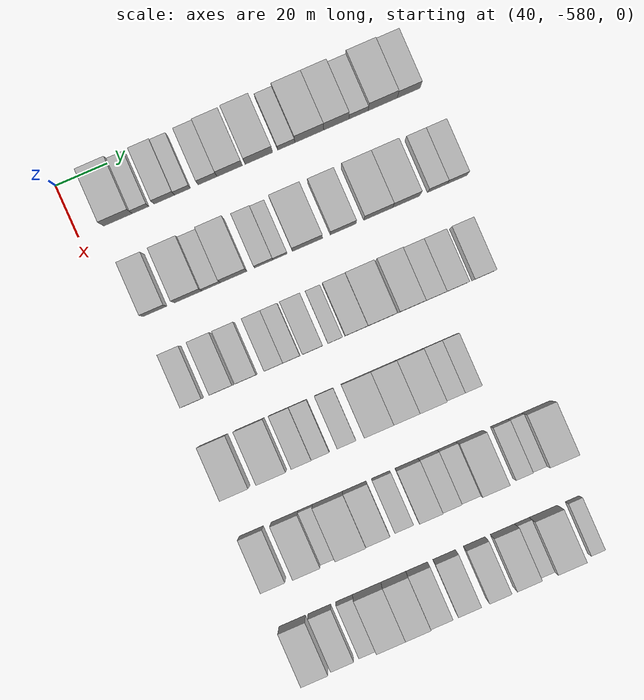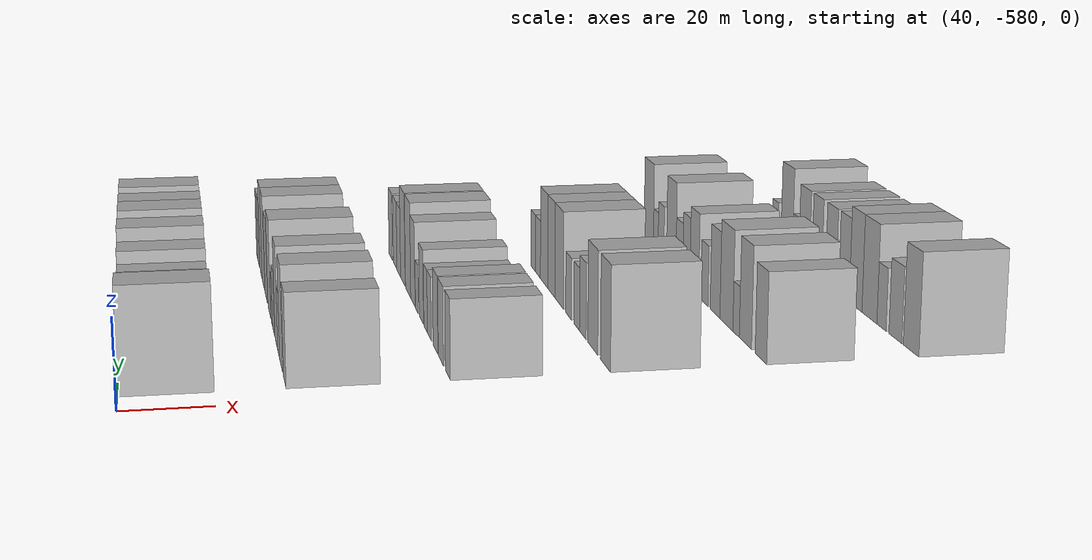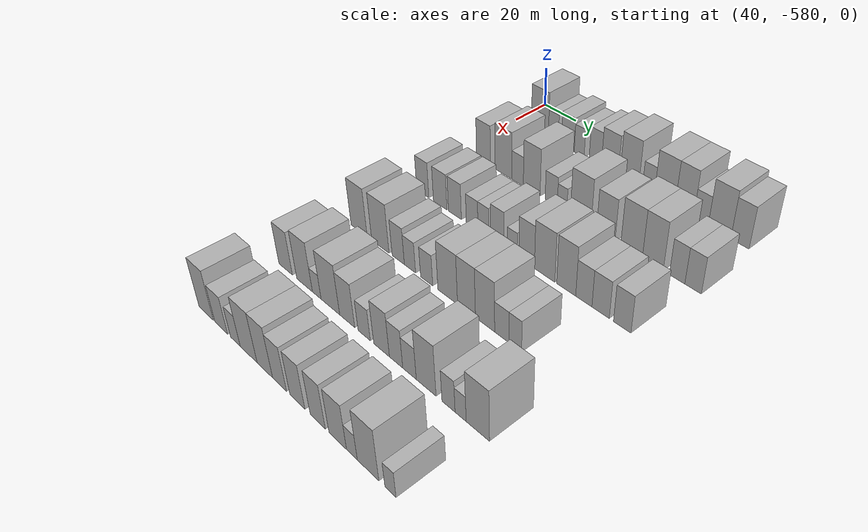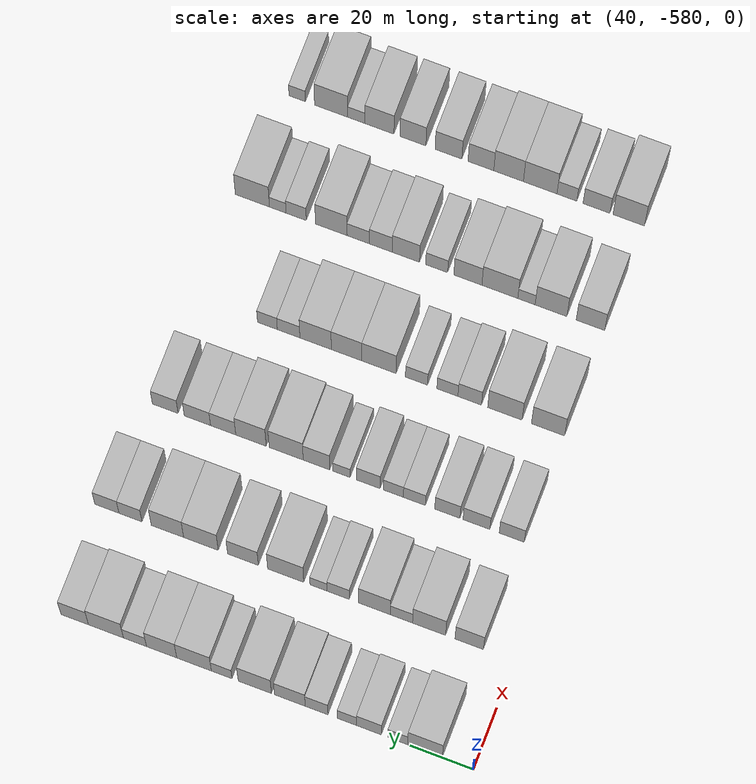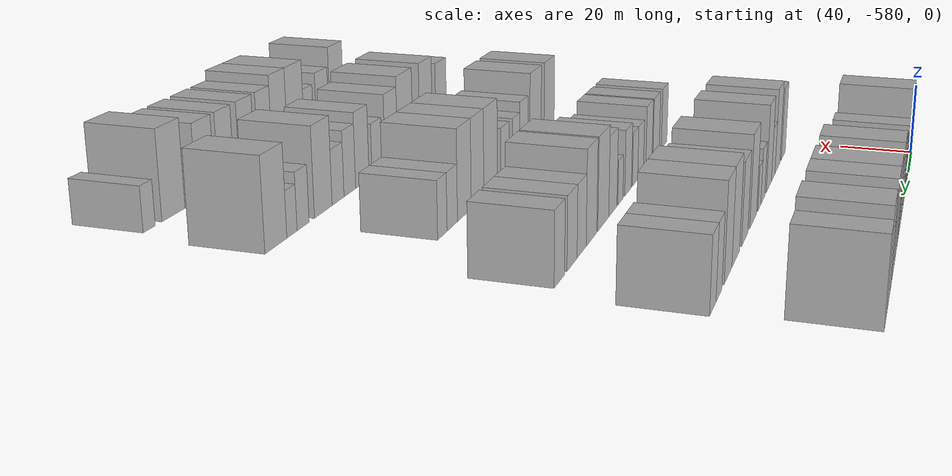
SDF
<sdf version="1.6">
 <world name="default">
  <model name="building_1">
   <static>1</static>
   <pose>50.0000 -564.4694 0 0.000000 0.000000 0.000000</pose>
   <link name="link">
    <pose>0 0 12.00 0 0 0</pose>
    <collision name="collision"><geometry><box><size>20.0000 11.0612 24.0000</size></box></geometry></collision>
    <visual name="visual">
     <cast_shadows>0</cast_shadows>
     <geometry><box><size>20.0000 11.0612 24.0000</size></box></geometry>
     <material>
      <script>
       <uri>model://HANNAS_wall/materials/scripts</uri>
       <uri>model://HANNAS_wall/materials/textures</uri>
       <name>vrc/HANNAS_wall</name>
      </script>
     </material>
    </visual>
   </link>
  </model>
  <model name="building_2">
   <static>1</static>
   <pose>50.0000 -555.7566 0 0.000000 0.000000 0.000000</pose>
   <link name="link">
    <pose>0 0 7.50 0 0 0</pose>
    <collision name="collision"><geometry><box><size>20.0000 6.3645 15.0000</size></box></geometry></collision>
    <visual name="visual">
     <cast_shadows>0</cast_shadows>
     <geometry><box><size>20.0000 6.3645 15.0000</size></box></geometry>
     <material>
      <script>
       <uri>model://HANNAS_wall/materials/scripts</uri>
       <uri>model://HANNAS_wall/materials/textures</uri>
       <name>vrc/HANNAS_wall</name>
      </script>
     </material>
    </visual>
   </link>
  </model>
  <model name="building_3">
   <static>1</static>
   <pose>50.0000 -546.5728 0 0.000000 0.000000 0.000000</pose>
   <link name="link">
    <pose>0 0 9.00 0 0 0</pose>
    <collision name="collision"><geometry><box><size>20.0000 8.0031 18.0000</size></box></geometry></collision>
    <visual name="visual">
     <cast_shadows>0</cast_shadows>
     <geometry><box><size>20.0000 8.0031 18.0000</size></box></geometry>
     <material>
      <script>
       <uri>model://HANNAS_wall/materials/scripts</uri>
       <uri>model://HANNAS_wall/materials/textures</uri>
       <name>vrc/HANNAS_wall</name>
      </script>
     </material>
    </visual>
   </link>
  </model>
  <model name="building_4">
   <static>1</static>
   <pose>50.0000 -539.5409 0 0.000000 0.000000 0.000000</pose>
   <link name="link">
    <pose>0 0 7.50 0 0 0</pose>
    <collision name="collision"><geometry><box><size>20.0000 6.0607 15.0000</size></box></geometry></collision>
    <visual name="visual">
     <cast_shadows>0</cast_shadows>
     <geometry><box><size>20.0000 6.0607 15.0000</size></box></geometry>
     <material>
      <script>
       <uri>model://HANNAS_wall/materials/scripts</uri>
       <uri>model://HANNAS_wall/materials/textures</uri>
       <name>vrc/HANNAS_wall</name>
      </script>
     </material>
    </visual>
   </link>
  </model>
  <model name="building_5">
   <static>1</static>
   <pose>50.0000 -529.8719 0 0.000000 0.000000 0.000000</pose>
   <link name="link">
    <pose>0 0 9.00 0 0 0</pose>
    <collision name="collision"><geometry><box><size>20.0000 7.2773 18.0000</size></box></geometry></collision>
    <visual name="visual">
     <cast_shadows>0</cast_shadows>
     <geometry><box><size>20.0000 7.2773 18.0000</size></box></geometry>
     <material>
      <script>
       <uri>model://HANNAS_wall/materials/scripts</uri>
       <uri>model://HANNAS_wall/materials/textures</uri>
       <name>vrc/HANNAS_wall</name>
      </script>
     </material>
    </visual>
   </link>
  </model>
  <model name="building_6">
   <static>1</static>
   <pose>50.0000 -521.3168 0 0.000000 0.000000 0.000000</pose>
   <link name="link">
    <pose>0 0 10.50 0 0 0</pose>
    <collision name="collision"><geometry><box><size>20.0000 9.8328 21.0000</size></box></geometry></collision>
    <visual name="visual">
     <cast_shadows>0</cast_shadows>
     <geometry><box><size>20.0000 9.8328 21.0000</size></box></geometry>
     <material>
      <script>
       <uri>model://HANNAS_wall/materials/scripts</uri>
       <uri>model://HANNAS_wall/materials/textures</uri>
       <name>vrc/HANNAS_wall</name>
      </script>
     </material>
    </visual>
   </link>
  </model>
  <model name="building_7">
   <static>1</static>
   <pose>50.0000 -510.0888 0 0.000000 0.000000 0.000000</pose>
   <link name="link">
    <pose>0 0 12.00 0 0 0</pose>
    <collision name="collision"><geometry><box><size>20.0000 10.6232 24.0000</size></box></geometry></collision>
    <visual name="visual">
     <cast_shadows>0</cast_shadows>
     <geometry><box><size>20.0000 10.6232 24.0000</size></box></geometry>
     <material>
      <script>
       <uri>model://HANNAS_wall/materials/scripts</uri>
       <uri>model://HANNAS_wall/materials/textures</uri>
       <name>vrc/HANNAS_wall</name>
      </script>
     </material>
    </visual>
   </link>
  </model>
  <model name="building_8">
   <static>1</static>
   <pose>50.0000 -499.4686 0 0.000000 0.000000 0.000000</pose>
   <link name="link">
    <pose>0 0 7.50 0 0 0</pose>
    <collision name="collision"><geometry><box><size>20.0000 6.6173 15.0000</size></box></geometry></collision>
    <visual name="visual">
     <cast_shadows>0</cast_shadows>
     <geometry><box><size>20.0000 6.6173 15.0000</size></box></geometry>
     <material>
      <script>
       <uri>model://HANNAS_wall/materials/scripts</uri>
       <uri>model://HANNAS_wall/materials/textures</uri>
       <name>vrc/HANNAS_wall</name>
      </script>
     </material>
    </visual>
   </link>
  </model>
  <model name="building_9">
   <static>1</static>
   <pose>50.0000 -490.6097 0 0.000000 0.000000 0.000000</pose>
   <link name="link">
    <pose>0 0 12.00 0 0 0</pose>
    <collision name="collision"><geometry><box><size>20.0000 11.1005 24.0000</size></box></geometry></collision>
    <visual name="visual">
     <cast_shadows>0</cast_shadows>
     <geometry><box><size>20.0000 11.1005 24.0000</size></box></geometry>
     <material>
      <script>
       <uri>model://HANNAS_wall/materials/scripts</uri>
       <uri>model://HANNAS_wall/materials/textures</uri>
       <name>vrc/HANNAS_wall</name>
      </script>
     </material>
    </visual>
   </link>
  </model>
  <model name="building_10">
   <static>1</static>
   <pose>50.0000 -480.1993 0 0.000000 0.000000 0.000000</pose>
   <link name="link">
    <pose>0 0 12.00 0 0 0</pose>
    <collision name="collision"><geometry><box><size>20.0000 9.7203 24.0000</size></box></geometry></collision>
    <visual name="visual">
     <cast_shadows>0</cast_shadows>
     <geometry><box><size>20.0000 9.7203 24.0000</size></box></geometry>
     <material>
      <script>
       <uri>model://HANNAS_wall/materials/scripts</uri>
       <uri>model://HANNAS_wall/materials/textures</uri>
       <name>vrc/HANNAS_wall</name>
      </script>
     </material>
    </visual>
   </link>
  </model>
  <model name="building_11">
   <static>1</static>
   <pose>50.0000 -471.6114 0 0.000000 0.000000 0.000000</pose>
   <link name="link">
    <pose>0 0 7.50 0 0 0</pose>
    <collision name="collision"><geometry><box><size>20.0000 7.4555 15.0000</size></box></geometry></collision>
    <visual name="visual">
     <cast_shadows>0</cast_shadows>
     <geometry><box><size>20.0000 7.4555 15.0000</size></box></geometry>
     <material>
      <script>
       <uri>model://HANNAS_wall/materials/scripts</uri>
       <uri>model://HANNAS_wall/materials/textures</uri>
       <name>vrc/HANNAS_wall</name>
      </script>
     </material>
    </visual>
   </link>
  </model>
  <model name="building_12">
   <static>1</static>
   <pose>50.0000 -462.2677 0 0.000000 0.000000 0.000000</pose>
   <link name="link">
    <pose>0 0 12.00 0 0 0</pose>
    <collision name="collision"><geometry><box><size>20.0000 11.2320 24.0000</size></box></geometry></collision>
    <visual name="visual">
     <cast_shadows>0</cast_shadows>
     <geometry><box><size>20.0000 11.2320 24.0000</size></box></geometry>
     <material>
      <script>
       <uri>model://HANNAS_wall/materials/scripts</uri>
       <uri>model://HANNAS_wall/materials/textures</uri>
       <name>vrc/HANNAS_wall</name>
      </script>
     </material>
    </visual>
   </link>
  </model>
  <model name="building_13">
   <static>1</static>
   <pose>50.0000 -452.2263 0 0.000000 0.000000 0.000000</pose>
   <link name="link">
    <pose>0 0 10.50 0 0 0</pose>
    <collision name="collision"><geometry><box><size>20.0000 8.8507 21.0000</size></box></geometry></collision>
    <visual name="visual">
     <cast_shadows>0</cast_shadows>
     <geometry><box><size>20.0000 8.8507 21.0000</size></box></geometry>
     <material>
      <script>
       <uri>model://HANNAS_wall/materials/scripts</uri>
       <uri>model://HANNAS_wall/materials/textures</uri>
       <name>vrc/HANNAS_wall</name>
      </script>
     </material>
    </visual>
   </link>
  </model>
  <model name="building_109">
   <static>1</static>
   <pose>85.0000 -565.4421 0 0.000000 0.000000 0.000000</pose>
   <link name="link">
    <pose>0 0 10.50 0 0 0</pose>
    <collision name="collision"><geometry><box><size>20.0000 9.1157 21.0000</size></box></geometry></collision>
    <visual name="visual">
     <cast_shadows>0</cast_shadows>
     <geometry><box><size>20.0000 9.1157 21.0000</size></box></geometry>
     <material>
      <script>
       <uri>model://HANNAS_wall/materials/scripts</uri>
       <uri>model://HANNAS_wall/materials/textures</uri>
       <name>vrc/HANNAS_wall</name>
      </script>
     </material>
    </visual>
   </link>
  </model>
  <model name="building_110">
   <static>1</static>
   <pose>85.0000 -552.5919 0 0.000000 0.000000 0.000000</pose>
   <link name="link">
    <pose>0 0 12.00 0 0 0</pose>
    <collision name="collision"><geometry><box><size>20.0000 10.5847 24.0000</size></box></geometry></collision>
    <visual name="visual">
     <cast_shadows>0</cast_shadows>
     <geometry><box><size>20.0000 10.5847 24.0000</size></box></geometry>
     <material>
      <script>
       <uri>model://HANNAS_wall/materials/scripts</uri>
       <uri>model://HANNAS_wall/materials/textures</uri>
       <name>vrc/HANNAS_wall</name>
      </script>
     </material>
    </visual>
   </link>
  </model>
  <model name="building_111">
   <static>1</static>
   <pose>85.0000 -543.7141 0 0.000000 0.000000 0.000000</pose>
   <link name="link">
    <pose>0 0 7.50 0 0 0</pose>
    <collision name="collision"><geometry><box><size>20.0000 7.1709 15.0000</size></box></geometry></collision>
    <visual name="visual">
     <cast_shadows>0</cast_shadows>
     <geometry><box><size>20.0000 7.1709 15.0000</size></box></geometry>
     <material>
      <script>
       <uri>model://HANNAS_wall/materials/scripts</uri>
       <uri>model://HANNAS_wall/materials/textures</uri>
       <name>vrc/HANNAS_wall</name>
      </script>
     </material>
    </visual>
   </link>
  </model>
  <model name="building_112">
   <static>1</static>
   <pose>85.0000 -535.0570 0 0.000000 0.000000 0.000000</pose>
   <link name="link">
    <pose>0 0 12.00 0 0 0</pose>
    <collision name="collision"><geometry><box><size>20.0000 10.1433 24.0000</size></box></geometry></collision>
    <visual name="visual">
     <cast_shadows>0</cast_shadows>
     <geometry><box><size>20.0000 10.1433 24.0000</size></box></geometry>
     <material>
      <script>
       <uri>model://HANNAS_wall/materials/scripts</uri>
       <uri>model://HANNAS_wall/materials/textures</uri>
       <name>vrc/HANNAS_wall</name>
      </script>
     </material>
    </visual>
   </link>
  </model>
  <model name="building_113">
   <static>1</static>
   <pose>85.0000 -523.4355 0 0.000000 0.000000 0.000000</pose>
   <link name="link">
    <pose>0 0 7.50 0 0 0</pose>
    <collision name="collision"><geometry><box><size>20.0000 7.0998 15.0000</size></box></geometry></collision>
    <visual name="visual">
     <cast_shadows>0</cast_shadows>
     <geometry><box><size>20.0000 7.0998 15.0000</size></box></geometry>
     <material>
      <script>
       <uri>model://HANNAS_wall/materials/scripts</uri>
       <uri>model://HANNAS_wall/materials/textures</uri>
       <name>vrc/HANNAS_wall</name>
      </script>
     </material>
    </visual>
   </link>
  </model>
  <model name="building_114">
   <static>1</static>
   <pose>85.0000 -517.1302 0 0.000000 0.000000 0.000000</pose>
   <link name="link">
    <pose>0 0 6.00 0 0 0</pose>
    <collision name="collision"><geometry><box><size>20.0000 5.5107 12.0000</size></box></geometry></collision>
    <visual name="visual">
     <cast_shadows>0</cast_shadows>
     <geometry><box><size>20.0000 5.5107 12.0000</size></box></geometry>
     <material>
      <script>
       <uri>model://HANNAS_wall/materials/scripts</uri>
       <uri>model://HANNAS_wall/materials/textures</uri>
       <name>vrc/HANNAS_wall</name>
      </script>
     </material>
    </visual>
   </link>
  </model>
  <model name="building_115">
   <static>1</static>
   <pose>85.0000 -506.5688 0 0.000000 0.000000 0.000000</pose>
   <link name="link">
    <pose>0 0 12.00 0 0 0</pose>
    <collision name="collision"><geometry><box><size>20.0000 11.6121 24.0000</size></box></geometry></collision>
    <visual name="visual">
     <cast_shadows>0</cast_shadows>
     <geometry><box><size>20.0000 11.6121 24.0000</size></box></geometry>
     <material>
      <script>
       <uri>model://HANNAS_wall/materials/scripts</uri>
       <uri>model://HANNAS_wall/materials/textures</uri>
       <name>vrc/HANNAS_wall</name>
      </script>
     </material>
    </visual>
   </link>
  </model>
  <model name="building_116">
   <static>1</static>
   <pose>85.0000 -492.8027 0 0.000000 0.000000 0.000000</pose>
   <link name="link">
    <pose>0 0 10.50 0 0 0</pose>
    <collision name="collision"><geometry><box><size>20.0000 9.9202 21.0000</size></box></geometry></collision>
    <visual name="visual">
     <cast_shadows>0</cast_shadows>
     <geometry><box><size>20.0000 9.9202 21.0000</size></box></geometry>
     <material>
      <script>
       <uri>model://HANNAS_wall/materials/scripts</uri>
       <uri>model://HANNAS_wall/materials/textures</uri>
       <name>vrc/HANNAS_wall</name>
      </script>
     </material>
    </visual>
   </link>
  </model>
  <model name="building_117">
   <static>1</static>
   <pose>85.0000 -479.2614 0 0.000000 0.000000 0.000000</pose>
   <link name="link">
    <pose>0 0 12.00 0 0 0</pose>
    <collision name="collision"><geometry><box><size>20.0000 11.1623 24.0000</size></box></geometry></collision>
    <visual name="visual">
     <cast_shadows>0</cast_shadows>
     <geometry><box><size>20.0000 11.1623 24.0000</size></box></geometry>
     <material>
      <script>
       <uri>model://HANNAS_wall/materials/scripts</uri>
       <uri>model://HANNAS_wall/materials/textures</uri>
       <name>vrc/HANNAS_wall</name>
      </script>
     </material>
    </visual>
   </link>
  </model>
  <model name="building_118">
   <static>1</static>
   <pose>85.0000 -468.4498 0 0.000000 0.000000 0.000000</pose>
   <link name="link">
    <pose>0 0 12.00 0 0 0</pose>
    <collision name="collision"><geometry><box><size>20.0000 10.4608 24.0000</size></box></geometry></collision>
    <visual name="visual">
     <cast_shadows>0</cast_shadows>
     <geometry><box><size>20.0000 10.4608 24.0000</size></box></geometry>
     <material>
      <script>
       <uri>model://HANNAS_wall/materials/scripts</uri>
       <uri>model://HANNAS_wall/materials/textures</uri>
       <name>vrc/HANNAS_wall</name>
      </script>
     </material>
    </visual>
   </link>
  </model>
  <model name="building_119">
   <static>1</static>
   <pose>85.0000 -456.4879 0 0.000000 0.000000 0.000000</pose>
   <link name="link">
    <pose>0 0 9.00 0 0 0</pose>
    <collision name="collision"><geometry><box><size>20.0000 7.4631 18.0000</size></box></geometry></collision>
    <visual name="visual">
     <cast_shadows>0</cast_shadows>
     <geometry><box><size>20.0000 7.4631 18.0000</size></box></geometry>
     <material>
      <script>
       <uri>model://HANNAS_wall/materials/scripts</uri>
       <uri>model://HANNAS_wall/materials/textures</uri>
       <name>vrc/HANNAS_wall</name>
      </script>
     </material>
    </visual>
   </link>
  </model>
  <model name="building_120">
   <static>1</static>
   <pose>85.0000 -448.8645 0 0.000000 0.000000 0.000000</pose>
   <link name="link">
    <pose>0 0 9.00 0 0 0</pose>
    <collision name="collision"><geometry><box><size>20.0000 7.7838 18.0000</size></box></geometry></collision>
    <visual name="visual">
     <cast_shadows>0</cast_shadows>
     <geometry><box><size>20.0000 7.7838 18.0000</size></box></geometry>
     <material>
      <script>
       <uri>model://HANNAS_wall/materials/scripts</uri>
       <uri>model://HANNAS_wall/materials/textures</uri>
       <name>vrc/HANNAS_wall</name>
      </script>
     </material>
    </visual>
   </link>
  </model>
  <model name="building_235">
   <static>1</static>
   <pose>120.0000 -565.9836 0 0.000000 0.000000 0.000000</pose>
   <link name="link">
    <pose>0 0 9.00 0 0 0</pose>
    <collision name="collision"><geometry><box><size>20.0000 8.0329 18.0000</size></box></geometry></collision>
    <visual name="visual">
     <cast_shadows>0</cast_shadows>
     <geometry><box><size>20.0000 8.0329 18.0000</size></box></geometry>
     <material>
      <script>
       <uri>model://HANNAS_wall/materials/scripts</uri>
       <uri>model://HANNAS_wall/materials/textures</uri>
       <name>vrc/HANNAS_wall</name>
      </script>
     </material>
    </visual>
   </link>
  </model>
  <model name="building_236">
   <static>1</static>
   <pose>120.0000 -554.6503 0 0.000000 0.000000 0.000000</pose>
   <link name="link">
    <pose>0 0 9.00 0 0 0</pose>
    <collision name="collision"><geometry><box><size>20.0000 8.6335 18.0000</size></box></geometry></collision>
    <visual name="visual">
     <cast_shadows>0</cast_shadows>
     <geometry><box><size>20.0000 8.6335 18.0000</size></box></geometry>
     <material>
      <script>
       <uri>model://HANNAS_wall/materials/scripts</uri>
       <uri>model://HANNAS_wall/materials/textures</uri>
       <name>vrc/HANNAS_wall</name>
      </script>
     </material>
    </visual>
   </link>
  </model>
  <model name="building_237">
   <static>1</static>
   <pose>120.0000 -545.2836 0 0.000000 0.000000 0.000000</pose>
   <link name="link">
    <pose>0 0 9.00 0 0 0</pose>
    <collision name="collision"><geometry><box><size>20.0000 8.1000 18.0000</size></box></geometry></collision>
    <visual name="visual">
     <cast_shadows>0</cast_shadows>
     <geometry><box><size>20.0000 8.1000 18.0000</size></box></geometry>
     <material>
      <script>
       <uri>model://HANNAS_wall/materials/scripts</uri>
       <uri>model://HANNAS_wall/materials/textures</uri>
       <name>vrc/HANNAS_wall</name>
      </script>
     </material>
    </visual>
   </link>
  </model>
  <model name="building_238">
   <static>1</static>
   <pose>120.0000 -534.6837 0 0.000000 0.000000 0.000000</pose>
   <link name="link">
    <pose>0 0 7.50 0 0 0</pose>
    <collision name="collision"><geometry><box><size>20.0000 7.0998 15.0000</size></box></geometry></collision>
    <visual name="visual">
     <cast_shadows>0</cast_shadows>
     <geometry><box><size>20.0000 7.0998 15.0000</size></box></geometry>
     <material>
      <script>
       <uri>model://HANNAS_wall/materials/scripts</uri>
       <uri>model://HANNAS_wall/materials/textures</uri>
       <name>vrc/HANNAS_wall</name>
      </script>
     </material>
    </visual>
   </link>
  </model>
  <model name="building_239">
   <static>1</static>
   <pose>120.0000 -527.8911 0 0.000000 0.000000 0.000000</pose>
   <link name="link">
    <pose>0 0 7.50 0 0 0</pose>
    <collision name="collision"><geometry><box><size>20.0000 6.4855 15.0000</size></box></geometry></collision>
    <visual name="visual">
     <cast_shadows>0</cast_shadows>
     <geometry><box><size>20.0000 6.4855 15.0000</size></box></geometry>
     <material>
      <script>
       <uri>model://HANNAS_wall/materials/scripts</uri>
       <uri>model://HANNAS_wall/materials/textures</uri>
       <name>vrc/HANNAS_wall</name>
      </script>
     </material>
    </visual>
   </link>
  </model>
  <model name="building_240">
   <static>1</static>
   <pose>120.0000 -519.8082 0 0.000000 0.000000 0.000000</pose>
   <link name="link">
    <pose>0 0 9.00 0 0 0</pose>
    <collision name="collision"><geometry><box><size>20.0000 7.6802 18.0000</size></box></geometry></collision>
    <visual name="visual">
     <cast_shadows>0</cast_shadows>
     <geometry><box><size>20.0000 7.6802 18.0000</size></box></geometry>
     <material>
      <script>
       <uri>model://HANNAS_wall/materials/scripts</uri>
       <uri>model://HANNAS_wall/materials/textures</uri>
       <name>vrc/HANNAS_wall</name>
      </script>
     </material>
    </visual>
   </link>
  </model>
  <model name="building_241">
   <static>1</static>
   <pose>120.0000 -511.1791 0 0.000000 0.000000 0.000000</pose>
   <link name="link">
    <pose>0 0 6.00 0 0 0</pose>
    <collision name="collision"><geometry><box><size>20.0000 5.5779 12.0000</size></box></geometry></collision>
    <visual name="visual">
     <cast_shadows>0</cast_shadows>
     <geometry><box><size>20.0000 5.5779 12.0000</size></box></geometry>
     <material>
      <script>
       <uri>model://HANNAS_wall/materials/scripts</uri>
       <uri>model://HANNAS_wall/materials/textures</uri>
       <name>vrc/HANNAS_wall</name>
      </script>
     </material>
    </visual>
   </link>
  </model>
  <model name="building_242">
   <static>1</static>
   <pose>120.0000 -503.0966 0 0.000000 0.000000 0.000000</pose>
   <link name="link">
    <pose>0 0 10.50 0 0 0</pose>
    <collision name="collision"><geometry><box><size>20.0000 8.5871 21.0000</size></box></geometry></collision>
    <visual name="visual">
     <cast_shadows>0</cast_shadows>
     <geometry><box><size>20.0000 8.5871 21.0000</size></box></geometry>
     <material>
      <script>
       <uri>model://HANNAS_wall/materials/scripts</uri>
       <uri>model://HANNAS_wall/materials/textures</uri>
       <name>vrc/HANNAS_wall</name>
      </script>
     </material>
    </visual>
   </link>
  </model>
  <model name="building_243">
   <static>1</static>
   <pose>120.0000 -493.3156 0 0.000000 0.000000 0.000000</pose>
   <link name="link">
    <pose>0 0 12.00 0 0 0</pose>
    <collision name="collision"><geometry><box><size>20.0000 10.9748 24.0000</size></box></geometry></collision>
    <visual name="visual">
     <cast_shadows>0</cast_shadows>
     <geometry><box><size>20.0000 10.9748 24.0000</size></box></geometry>
     <material>
      <script>
       <uri>model://HANNAS_wall/materials/scripts</uri>
       <uri>model://HANNAS_wall/materials/textures</uri>
       <name>vrc/HANNAS_wall</name>
      </script>
     </material>
    </visual>
   </link>
  </model>
  <model name="building_244">
   <static>1</static>
   <pose>120.0000 -481.9052 0 0.000000 0.000000 0.000000</pose>
   <link name="link">
    <pose>0 0 12.00 0 0 0</pose>
    <collision name="collision"><geometry><box><size>20.0000 9.8461 24.0000</size></box></geometry></collision>
    <visual name="visual">
     <cast_shadows>0</cast_shadows>
     <geometry><box><size>20.0000 9.8461 24.0000</size></box></geometry>
     <material>
      <script>
       <uri>model://HANNAS_wall/materials/scripts</uri>
       <uri>model://HANNAS_wall/materials/textures</uri>
       <name>vrc/HANNAS_wall</name>
      </script>
     </material>
    </visual>
   </link>
  </model>
  <model name="building_245">
   <static>1</static>
   <pose>120.0000 -472.8970 0 0.000000 0.000000 0.000000</pose>
   <link name="link">
    <pose>0 0 9.00 0 0 0</pose>
    <collision name="collision"><geometry><box><size>20.0000 8.1704 18.0000</size></box></geometry></collision>
    <visual name="visual">
     <cast_shadows>0</cast_shadows>
     <geometry><box><size>20.0000 8.1704 18.0000</size></box></geometry>
     <material>
      <script>
       <uri>model://HANNAS_wall/materials/scripts</uri>
       <uri>model://HANNAS_wall/materials/textures</uri>
       <name>vrc/HANNAS_wall</name>
      </script>
     </material>
    </visual>
   </link>
  </model>
  <model name="building_246">
   <static>1</static>
   <pose>120.0000 -464.5476 0 0.000000 0.000000 0.000000</pose>
   <link name="link">
    <pose>0 0 9.00 0 0 0</pose>
    <collision name="collision"><geometry><box><size>20.0000 8.5283 18.0000</size></box></geometry></collision>
    <visual name="visual">
     <cast_shadows>0</cast_shadows>
     <geometry><box><size>20.0000 8.5283 18.0000</size></box></geometry>
     <material>
      <script>
       <uri>model://HANNAS_wall/materials/scripts</uri>
       <uri>model://HANNAS_wall/materials/textures</uri>
       <name>vrc/HANNAS_wall</name>
      </script>
     </material>
    </visual>
   </link>
  </model>
  <model name="building_247">
   <static>1</static>
   <pose>120.0000 -454.1148 0 0.000000 0.000000 0.000000</pose>
   <link name="link">
    <pose>0 0 9.00 0 0 0</pose>
    <collision name="collision"><geometry><box><size>20.0000 8.3374 18.0000</size></box></geometry></collision>
    <visual name="visual">
     <cast_shadows>0</cast_shadows>
     <geometry><box><size>20.0000 8.3374 18.0000</size></box></geometry>
     <material>
      <script>
       <uri>model://HANNAS_wall/materials/scripts</uri>
       <uri>model://HANNAS_wall/materials/textures</uri>
       <name>vrc/HANNAS_wall</name>
      </script>
     </material>
    </visual>
   </link>
  </model>
  <model name="building_355">
   <static>1</static>
   <pose>155.0000 -564.6391 0 0.000000 0.000000 0.000000</pose>
   <link name="link">
    <pose>0 0 12.00 0 0 0</pose>
    <collision name="collision"><geometry><box><size>20.0000 10.7218 24.0000</size></box></geometry></collision>
    <visual name="visual">
     <cast_shadows>0</cast_shadows>
     <geometry><box><size>20.0000 10.7218 24.0000</size></box></geometry>
     <material>
      <script>
       <uri>model://HANNAS_wall/materials/scripts</uri>
       <uri>model://HANNAS_wall/materials/textures</uri>
       <name>vrc/HANNAS_wall</name>
      </script>
     </material>
    </visual>
   </link>
  </model>
  <model name="building_356">
   <static>1</static>
   <pose>155.0000 -550.7247 0 0.000000 0.000000 0.000000</pose>
   <link name="link">
    <pose>0 0 12.00 0 0 0</pose>
    <collision name="collision"><geometry><box><size>20.0000 11.1071 24.0000</size></box></geometry></collision>
    <visual name="visual">
     <cast_shadows>0</cast_shadows>
     <geometry><box><size>20.0000 11.1071 24.0000</size></box></geometry>
     <material>
      <script>
       <uri>model://HANNAS_wall/materials/scripts</uri>
       <uri>model://HANNAS_wall/materials/textures</uri>
       <name>vrc/HANNAS_wall</name>
      </script>
     </material>
    </visual>
   </link>
  </model>
  <model name="building_357">
   <static>1</static>
   <pose>155.0000 -539.3693 0 0.000000 0.000000 0.000000</pose>
   <link name="link">
    <pose>0 0 9.00 0 0 0</pose>
    <collision name="collision"><geometry><box><size>20.0000 7.6036 18.0000</size></box></geometry></collision>
    <visual name="visual">
     <cast_shadows>0</cast_shadows>
     <geometry><box><size>20.0000 7.6036 18.0000</size></box></geometry>
     <material>
      <script>
       <uri>model://HANNAS_wall/materials/scripts</uri>
       <uri>model://HANNAS_wall/materials/textures</uri>
       <name>vrc/HANNAS_wall</name>
      </script>
     </material>
    </visual>
   </link>
  </model>
  <model name="building_358">
   <static>1</static>
   <pose>155.0000 -532.1546 0 0.000000 0.000000 0.000000</pose>
   <link name="link">
    <pose>0 0 7.50 0 0 0</pose>
    <collision name="collision"><geometry><box><size>20.0000 6.8258 15.0000</size></box></geometry></collision>
    <visual name="visual">
     <cast_shadows>0</cast_shadows>
     <geometry><box><size>20.0000 6.8258 15.0000</size></box></geometry>
     <material>
      <script>
       <uri>model://HANNAS_wall/materials/scripts</uri>
       <uri>model://HANNAS_wall/materials/textures</uri>
       <name>vrc/HANNAS_wall</name>
      </script>
     </material>
    </visual>
   </link>
  </model>
  <model name="building_359">
   <static>1</static>
   <pose>155.0000 -522.1520 0 0.000000 0.000000 0.000000</pose>
   <link name="link">
    <pose>0 0 7.50 0 0 0</pose>
    <collision name="collision"><geometry><box><size>20.0000 7.1795 15.0000</size></box></geometry></collision>
    <visual name="visual">
     <cast_shadows>0</cast_shadows>
     <geometry><box><size>20.0000 7.1795 15.0000</size></box></geometry>
     <material>
      <script>
       <uri>model://HANNAS_wall/materials/scripts</uri>
       <uri>model://HANNAS_wall/materials/textures</uri>
       <name>vrc/HANNAS_wall</name>
      </script>
     </material>
    </visual>
   </link>
  </model>
  <model name="building_360">
   <static>1</static>
   <pose>155.0000 -509.9918 0 0.000000 0.000000 0.000000</pose>
   <link name="link">
    <pose>0 0 12.00 0 0 0</pose>
    <collision name="collision"><geometry><box><size>20.0000 11.1408 24.0000</size></box></geometry></collision>
    <visual name="visual">
     <cast_shadows>0</cast_shadows>
     <geometry><box><size>20.0000 11.1408 24.0000</size></box></geometry>
     <material>
      <script>
       <uri>model://HANNAS_wall/materials/scripts</uri>
       <uri>model://HANNAS_wall/materials/textures</uri>
       <name>vrc/HANNAS_wall</name>
      </script>
     </material>
    </visual>
   </link>
  </model>
  <model name="building_361">
   <static>1</static>
   <pose>155.0000 -499.4923 0 0.000000 0.000000 0.000000</pose>
   <link name="link">
    <pose>0 0 12.00 0 0 0</pose>
    <collision name="collision"><geometry><box><size>20.0000 9.8582 24.0000</size></box></geometry></collision>
    <visual name="visual">
     <cast_shadows>0</cast_shadows>
     <geometry><box><size>20.0000 9.8582 24.0000</size></box></geometry>
     <material>
      <script>
       <uri>model://HANNAS_wall/materials/scripts</uri>
       <uri>model://HANNAS_wall/materials/textures</uri>
       <name>vrc/HANNAS_wall</name>
      </script>
     </material>
    </visual>
   </link>
  </model>
  <model name="building_362">
   <static>1</static>
   <pose>155.0000 -489.4563 0 0.000000 0.000000 0.000000</pose>
   <link name="link">
    <pose>0 0 12.00 0 0 0</pose>
    <collision name="collision"><geometry><box><size>20.0000 10.2139 24.0000</size></box></geometry></collision>
    <visual name="visual">
     <cast_shadows>0</cast_shadows>
     <geometry><box><size>20.0000 10.2139 24.0000</size></box></geometry>
     <material>
      <script>
       <uri>model://HANNAS_wall/materials/scripts</uri>
       <uri>model://HANNAS_wall/materials/textures</uri>
       <name>vrc/HANNAS_wall</name>
      </script>
     </material>
    </visual>
   </link>
  </model>
  <model name="building_363">
   <static>1</static>
   <pose>155.0000 -480.6764 0 0.000000 0.000000 0.000000</pose>
   <link name="link">
    <pose>0 0 7.50 0 0 0</pose>
    <collision name="collision"><geometry><box><size>20.0000 7.3459 15.0000</size></box></geometry></collision>
    <visual name="visual">
     <cast_shadows>0</cast_shadows>
     <geometry><box><size>20.0000 7.3459 15.0000</size></box></geometry>
     <material>
      <script>
       <uri>model://HANNAS_wall/materials/scripts</uri>
       <uri>model://HANNAS_wall/materials/textures</uri>
       <name>vrc/HANNAS_wall</name>
      </script>
     </material>
    </visual>
   </link>
  </model>
  <model name="building_364">
   <static>1</static>
   <pose>155.0000 -473.7856 0 0.000000 0.000000 0.000000</pose>
   <link name="link">
    <pose>0 0 7.50 0 0 0</pose>
    <collision name="collision"><geometry><box><size>20.0000 6.4359 15.0000</size></box></geometry></collision>
    <visual name="visual">
     <cast_shadows>0</cast_shadows>
     <geometry><box><size>20.0000 6.4359 15.0000</size></box></geometry>
     <material>
      <script>
       <uri>model://HANNAS_wall/materials/scripts</uri>
       <uri>model://HANNAS_wall/materials/textures</uri>
       <name>vrc/HANNAS_wall</name>
      </script>
     </material>
    </visual>
   </link>
  </model>
  <model name="building_480">
   <static>1</static>
   <pose>190.0000 -565.3898 0 0.000000 0.000000 0.000000</pose>
   <link name="link">
    <pose>0 0 10.50 0 0 0</pose>
    <collision name="collision"><geometry><box><size>20.0000 9.2204 21.0000</size></box></geometry></collision>
    <visual name="visual">
     <cast_shadows>0</cast_shadows>
     <geometry><box><size>20.0000 9.2204 21.0000</size></box></geometry>
     <material>
      <script>
       <uri>model://HANNAS_wall/materials/scripts</uri>
       <uri>model://HANNAS_wall/materials/textures</uri>
       <name>vrc/HANNAS_wall</name>
      </script>
     </material>
    </visual>
   </link>
  </model>
  <model name="building_481">
   <static>1</static>
   <pose>190.0000 -552.6257 0 0.000000 0.000000 0.000000</pose>
   <link name="link">
    <pose>0 0 12.00 0 0 0</pose>
    <collision name="collision"><geometry><box><size>20.0000 10.3079 24.0000</size></box></geometry></collision>
    <visual name="visual">
     <cast_shadows>0</cast_shadows>
     <geometry><box><size>20.0000 10.3079 24.0000</size></box></geometry>
     <material>
      <script>
       <uri>model://HANNAS_wall/materials/scripts</uri>
       <uri>model://HANNAS_wall/materials/textures</uri>
       <name>vrc/HANNAS_wall</name>
      </script>
     </material>
    </visual>
   </link>
  </model>
  <model name="building_482">
   <static>1</static>
   <pose>190.0000 -544.6682 0 0.000000 0.000000 0.000000</pose>
   <link name="link">
    <pose>0 0 6.00 0 0 0</pose>
    <collision name="collision"><geometry><box><size>20.0000 5.6070 12.0000</size></box></geometry></collision>
    <visual name="visual">
     <cast_shadows>0</cast_shadows>
     <geometry><box><size>20.0000 5.6070 12.0000</size></box></geometry>
     <material>
      <script>
       <uri>model://HANNAS_wall/materials/scripts</uri>
       <uri>model://HANNAS_wall/materials/textures</uri>
       <name>vrc/HANNAS_wall</name>
      </script>
     </material>
    </visual>
   </link>
  </model>
  <model name="building_483">
   <static>1</static>
   <pose>190.0000 -536.0371 0 0.000000 0.000000 0.000000</pose>
   <link name="link">
    <pose>0 0 12.00 0 0 0</pose>
    <collision name="collision"><geometry><box><size>20.0000 11.6553 24.0000</size></box></geometry></collision>
    <visual name="visual">
     <cast_shadows>0</cast_shadows>
     <geometry><box><size>20.0000 11.6553 24.0000</size></box></geometry>
     <material>
      <script>
       <uri>model://HANNAS_wall/materials/scripts</uri>
       <uri>model://HANNAS_wall/materials/textures</uri>
       <name>vrc/HANNAS_wall</name>
      </script>
     </material>
    </visual>
   </link>
  </model>
  <model name="building_484">
   <static>1</static>
   <pose>190.0000 -525.6452 0 0.000000 0.000000 0.000000</pose>
   <link name="link">
    <pose>0 0 10.50 0 0 0</pose>
    <collision name="collision"><geometry><box><size>20.0000 9.1285 21.0000</size></box></geometry></collision>
    <visual name="visual">
     <cast_shadows>0</cast_shadows>
     <geometry><box><size>20.0000 9.1285 21.0000</size></box></geometry>
     <material>
      <script>
       <uri>model://HANNAS_wall/materials/scripts</uri>
       <uri>model://HANNAS_wall/materials/textures</uri>
       <name>vrc/HANNAS_wall</name>
      </script>
     </material>
    </visual>
   </link>
  </model>
  <model name="building_485">
   <static>1</static>
   <pose>190.0000 -515.5047 0 0.000000 0.000000 0.000000</pose>
   <link name="link">
    <pose>0 0 7.50 0 0 0</pose>
    <collision name="collision"><geometry><box><size>20.0000 7.1524 15.0000</size></box></geometry></collision>
    <visual name="visual">
     <cast_shadows>0</cast_shadows>
     <geometry><box><size>20.0000 7.1524 15.0000</size></box></geometry>
     <material>
      <script>
       <uri>model://HANNAS_wall/materials/scripts</uri>
       <uri>model://HANNAS_wall/materials/textures</uri>
       <name>vrc/HANNAS_wall</name>
      </script>
     </material>
    </visual>
   </link>
  </model>
  <model name="building_486">
   <static>1</static>
   <pose>190.0000 -505.4732 0 0.000000 0.000000 0.000000</pose>
   <link name="link">
    <pose>0 0 10.50 0 0 0</pose>
    <collision name="collision"><geometry><box><size>20.0000 8.9107 21.0000</size></box></geometry></collision>
    <visual name="visual">
     <cast_shadows>0</cast_shadows>
     <geometry><box><size>20.0000 8.9107 21.0000</size></box></geometry>
     <material>
      <script>
       <uri>model://HANNAS_wall/materials/scripts</uri>
       <uri>model://HANNAS_wall/materials/textures</uri>
       <name>vrc/HANNAS_wall</name>
      </script>
     </material>
    </visual>
   </link>
  </model>
  <model name="building_487">
   <static>1</static>
   <pose>190.0000 -497.3341 0 0.000000 0.000000 0.000000</pose>
   <link name="link">
    <pose>0 0 9.00 0 0 0</pose>
    <collision name="collision"><geometry><box><size>20.0000 7.3675 18.0000</size></box></geometry></collision>
    <visual name="visual">
     <cast_shadows>0</cast_shadows>
     <geometry><box><size>20.0000 7.3675 18.0000</size></box></geometry>
     <material>
      <script>
       <uri>model://HANNAS_wall/materials/scripts</uri>
       <uri>model://HANNAS_wall/materials/textures</uri>
       <name>vrc/HANNAS_wall</name>
      </script>
     </material>
    </visual>
   </link>
  </model>
  <model name="building_488">
   <static>1</static>
   <pose>190.0000 -490.0083 0 0.000000 0.000000 0.000000</pose>
   <link name="link">
    <pose>0 0 7.50 0 0 0</pose>
    <collision name="collision"><geometry><box><size>20.0000 7.2841 15.0000</size></box></geometry></collision>
    <visual name="visual">
     <cast_shadows>0</cast_shadows>
     <geometry><box><size>20.0000 7.2841 15.0000</size></box></geometry>
     <material>
      <script>
       <uri>model://HANNAS_wall/materials/scripts</uri>
       <uri>model://HANNAS_wall/materials/textures</uri>
       <name>vrc/HANNAS_wall</name>
      </script>
     </material>
    </visual>
   </link>
  </model>
  <model name="building_489">
   <static>1</static>
   <pose>190.0000 -481.1979 0 0.000000 0.000000 0.000000</pose>
   <link name="link">
    <pose>0 0 12.00 0 0 0</pose>
    <collision name="collision"><geometry><box><size>20.0000 10.3369 24.0000</size></box></geometry></collision>
    <visual name="visual">
     <cast_shadows>0</cast_shadows>
     <geometry><box><size>20.0000 10.3369 24.0000</size></box></geometry>
     <material>
      <script>
       <uri>model://HANNAS_wall/materials/scripts</uri>
       <uri>model://HANNAS_wall/materials/textures</uri>
       <name>vrc/HANNAS_wall</name>
      </script>
     </material>
    </visual>
   </link>
  </model>
  <model name="building_490">
   <static>1</static>
   <pose>190.0000 -469.7357 0 0.000000 0.000000 0.000000</pose>
   <link name="link">
    <pose>0 0 7.50 0 0 0</pose>
    <collision name="collision"><geometry><box><size>20.0000 6.5876 15.0000</size></box></geometry></collision>
    <visual name="visual">
     <cast_shadows>0</cast_shadows>
     <geometry><box><size>20.0000 6.5876 15.0000</size></box></geometry>
     <material>
      <script>
       <uri>model://HANNAS_wall/materials/scripts</uri>
       <uri>model://HANNAS_wall/materials/textures</uri>
       <name>vrc/HANNAS_wall</name>
      </script>
     </material>
    </visual>
   </link>
  </model>
  <model name="building_491">
   <static>1</static>
   <pose>190.0000 -463.7198 0 0.000000 0.000000 0.000000</pose>
   <link name="link">
    <pose>0 0 6.00 0 0 0</pose>
    <collision name="collision"><geometry><box><size>20.0000 5.4442 12.0000</size></box></geometry></collision>
    <visual name="visual">
     <cast_shadows>0</cast_shadows>
     <geometry><box><size>20.0000 5.4442 12.0000</size></box></geometry>
     <material>
      <script>
       <uri>model://HANNAS_wall/materials/scripts</uri>
       <uri>model://HANNAS_wall/materials/textures</uri>
       <name>vrc/HANNAS_wall</name>
      </script>
     </material>
    </visual>
   </link>
  </model>
  <model name="building_492">
   <static>1</static>
   <pose>190.0000 -455.4193 0 0.000000 0.000000 0.000000</pose>
   <link name="link">
    <pose>0 0 12.00 0 0 0</pose>
    <collision name="collision"><geometry><box><size>20.0000 11.1567 24.0000</size></box></geometry></collision>
    <visual name="visual">
     <cast_shadows>0</cast_shadows>
     <geometry><box><size>20.0000 11.1567 24.0000</size></box></geometry>
     <material>
      <script>
       <uri>model://HANNAS_wall/materials/scripts</uri>
       <uri>model://HANNAS_wall/materials/textures</uri>
       <name>vrc/HANNAS_wall</name>
      </script>
     </material>
    </visual>
   </link>
  </model>
  <model name="building_606">
   <static>1</static>
   <pose>225.0000 -564.8929 0 0.000000 0.000000 0.000000</pose>
   <link name="link">
    <pose>0 0 12.00 0 0 0</pose>
    <collision name="collision"><geometry><box><size>20.0000 10.2141 24.0000</size></box></geometry></collision>
    <visual name="visual">
     <cast_shadows>0</cast_shadows>
     <geometry><box><size>20.0000 10.2141 24.0000</size></box></geometry>
     <material>
      <script>
       <uri>model://HANNAS_wall/materials/scripts</uri>
       <uri>model://HANNAS_wall/materials/textures</uri>
       <name>vrc/HANNAS_wall</name>
      </script>
     </material>
    </visual>
   </link>
  </model>
  <model name="building_607">
   <static>1</static>
   <pose>225.0000 -554.4159 0 0.000000 0.000000 0.000000</pose>
   <link name="link">
    <pose>0 0 9.00 0 0 0</pose>
    <collision name="collision"><geometry><box><size>20.0000 8.7400 18.0000</size></box></geometry></collision>
    <visual name="visual">
     <cast_shadows>0</cast_shadows>
     <geometry><box><size>20.0000 8.7400 18.0000</size></box></geometry>
     <material>
      <script>
       <uri>model://HANNAS_wall/materials/scripts</uri>
       <uri>model://HANNAS_wall/materials/textures</uri>
       <name>vrc/HANNAS_wall</name>
      </script>
     </material>
    </visual>
   </link>
  </model>
  <model name="building_608">
   <static>1</static>
   <pose>225.0000 -544.8139 0 0.000000 0.000000 0.000000</pose>
   <link name="link">
    <pose>0 0 7.50 0 0 0</pose>
    <collision name="collision"><geometry><box><size>20.0000 6.4639 15.0000</size></box></geometry></collision>
    <visual name="visual">
     <cast_shadows>0</cast_shadows>
     <geometry><box><size>20.0000 6.4639 15.0000</size></box></geometry>
     <material>
      <script>
       <uri>model://HANNAS_wall/materials/scripts</uri>
       <uri>model://HANNAS_wall/materials/textures</uri>
       <name>vrc/HANNAS_wall</name>
      </script>
     </material>
    </visual>
   </link>
  </model>
  <model name="building_609">
   <static>1</static>
   <pose>225.0000 -536.1141 0 0.000000 0.000000 0.000000</pose>
   <link name="link">
    <pose>0 0 12.00 0 0 0</pose>
    <collision name="collision"><geometry><box><size>20.0000 10.9357 24.0000</size></box></geometry></collision>
    <visual name="visual">
     <cast_shadows>0</cast_shadows>
     <geometry><box><size>20.0000 10.9357 24.0000</size></box></geometry>
     <material>
      <script>
       <uri>model://HANNAS_wall/materials/scripts</uri>
       <uri>model://HANNAS_wall/materials/textures</uri>
       <name>vrc/HANNAS_wall</name>
      </script>
     </material>
    </visual>
   </link>
  </model>
  <model name="building_610">
   <static>1</static>
   <pose>225.0000 -525.8165 0 0.000000 0.000000 0.000000</pose>
   <link name="link">
    <pose>0 0 12.00 0 0 0</pose>
    <collision name="collision"><geometry><box><size>20.0000 9.6596 24.0000</size></box></geometry></collision>
    <visual name="visual">
     <cast_shadows>0</cast_shadows>
     <geometry><box><size>20.0000 9.6596 24.0000</size></box></geometry>
     <material>
      <script>
       <uri>model://HANNAS_wall/materials/scripts</uri>
       <uri>model://HANNAS_wall/materials/textures</uri>
       <name>vrc/HANNAS_wall</name>
      </script>
     </material>
    </visual>
   </link>
  </model>
  <model name="building_611">
   <static>1</static>
   <pose>225.0000 -516.7812 0 0.000000 0.000000 0.000000</pose>
   <link name="link">
    <pose>0 0 10.50 0 0 0</pose>
    <collision name="collision"><geometry><box><size>20.0000 8.4110 21.0000</size></box></geometry></collision>
    <visual name="visual">
     <cast_shadows>0</cast_shadows>
     <geometry><box><size>20.0000 8.4110 21.0000</size></box></geometry>
     <material>
      <script>
       <uri>model://HANNAS_wall/materials/scripts</uri>
       <uri>model://HANNAS_wall/materials/textures</uri>
       <name>vrc/HANNAS_wall</name>
      </script>
     </material>
    </visual>
   </link>
  </model>
  <model name="building_612">
   <static>1</static>
   <pose>225.0000 -506.1965 0 0.000000 0.000000 0.000000</pose>
   <link name="link">
    <pose>0 0 10.50 0 0 0</pose>
    <collision name="collision"><geometry><box><size>20.0000 8.7585 21.0000</size></box></geometry></collision>
    <visual name="visual">
     <cast_shadows>0</cast_shadows>
     <geometry><box><size>20.0000 8.7585 21.0000</size></box></geometry>
     <material>
      <script>
       <uri>model://HANNAS_wall/materials/scripts</uri>
       <uri>model://HANNAS_wall/materials/textures</uri>
       <name>vrc/HANNAS_wall</name>
      </script>
     </material>
    </visual>
   </link>
  </model>
  <model name="building_613">
   <static>1</static>
   <pose>225.0000 -494.5829 0 0.000000 0.000000 0.000000</pose>
   <link name="link">
    <pose>0 0 10.50 0 0 0</pose>
    <collision name="collision"><geometry><box><size>20.0000 8.4686 21.0000</size></box></geometry></collision>
    <visual name="visual">
     <cast_shadows>0</cast_shadows>
     <geometry><box><size>20.0000 8.4686 21.0000</size></box></geometry>
     <material>
      <script>
       <uri>model://HANNAS_wall/materials/scripts</uri>
       <uri>model://HANNAS_wall/materials/textures</uri>
       <name>vrc/HANNAS_wall</name>
      </script>
     </material>
    </visual>
   </link>
  </model>
  <model name="building_614">
   <static>1</static>
   <pose>225.0000 -483.6226 0 0.000000 0.000000 0.000000</pose>
   <link name="link">
    <pose>0 0 10.50 0 0 0</pose>
    <collision name="collision"><geometry><box><size>20.0000 9.4520 21.0000</size></box></geometry></collision>
    <visual name="visual">
     <cast_shadows>0</cast_shadows>
     <geometry><box><size>20.0000 9.4520 21.0000</size></box></geometry>
     <material>
      <script>
       <uri>model://HANNAS_wall/materials/scripts</uri>
       <uri>model://HANNAS_wall/materials/textures</uri>
       <name>vrc/HANNAS_wall</name>
      </script>
     </material>
    </visual>
   </link>
  </model>
  <model name="building_615">
   <static>1</static>
   <pose>225.0000 -476.0748 0 0.000000 0.000000 0.000000</pose>
   <link name="link">
    <pose>0 0 6.00 0 0 0</pose>
    <collision name="collision"><geometry><box><size>20.0000 5.6436 12.0000</size></box></geometry></collision>
    <visual name="visual">
     <cast_shadows>0</cast_shadows>
     <geometry><box><size>20.0000 5.6436 12.0000</size></box></geometry>
     <material>
      <script>
       <uri>model://HANNAS_wall/materials/scripts</uri>
       <uri>model://HANNAS_wall/materials/textures</uri>
       <name>vrc/HANNAS_wall</name>
      </script>
     </material>
    </visual>
   </link>
  </model>
  <model name="building_616">
   <static>1</static>
   <pose>225.0000 -467.8087 0 0.000000 0.000000 0.000000</pose>
   <link name="link">
    <pose>0 0 12.00 0 0 0</pose>
    <collision name="collision"><geometry><box><size>20.0000 10.8887 24.0000</size></box></geometry></collision>
    <visual name="visual">
     <cast_shadows>0</cast_shadows>
     <geometry><box><size>20.0000 10.8887 24.0000</size></box></geometry>
     <material>
      <script>
       <uri>model://HANNAS_wall/materials/scripts</uri>
       <uri>model://HANNAS_wall/materials/textures</uri>
       <name>vrc/HANNAS_wall</name>
      </script>
     </material>
    </visual>
   </link>
  </model>
  <model name="building_617">
   <static>1</static>
   <pose>225.0000 -456.6681 0 0.000000 0.000000 0.000000</pose>
   <link name="link">
    <pose>0 0 6.00 0 0 0</pose>
    <collision name="collision"><geometry><box><size>20.0000 5.3925 12.0000</size></box></geometry></collision>
    <visual name="visual">
     <cast_shadows>0</cast_shadows>
     <geometry><box><size>20.0000 5.3925 12.0000</size></box></geometry>
     <material>
      <script>
       <uri>model://HANNAS_wall/materials/scripts</uri>
       <uri>model://HANNAS_wall/materials/textures</uri>
       <name>vrc/HANNAS_wall</name>
      </script>
     </material>
    </visual>
   </link>
  </model>
 </world>
</sdf>
